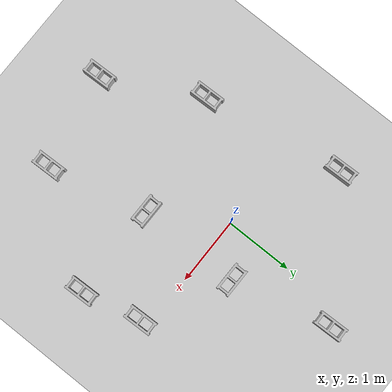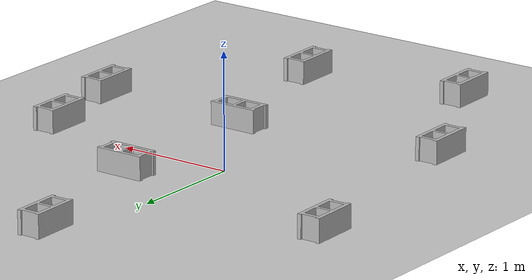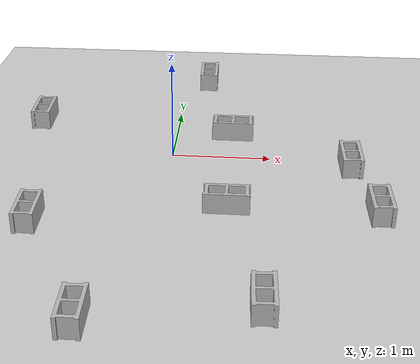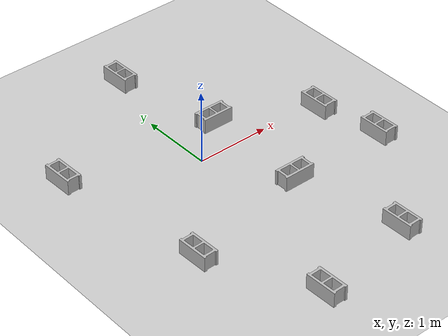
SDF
<sdf version="1.6">
 <world name="default">
  <light name="sun" type="directional">
   <pose>0 0 10 0 -0 0</pose>
   <diffuse>0.8 0.8 0.8 1</diffuse>
   <specular>0.1 0.1 0.1 1</specular>
   <attenuation>
    <range>1000</range>
    <constant>0.9</constant>
    <linear>0.01</linear>
    <quadratic>0.001</quadratic>
   </attenuation>
   <direction>-0.5 0.5 -1</direction>
  </light>
  <model name="ground_plane">
   <static>1</static>
   <link name="link">
    <collision name="collision">
     <geometry><plane><normal>0 0 1</normal><size>100 100</size></plane></geometry>
     <surface><friction><ode><mu>100</mu><mu2>50</mu2></ode></friction></surface>
    </collision>
    <visual name="visual">
     <cast_shadows>0</cast_shadows>
     <geometry><plane><normal>0 0 1</normal><size>100 100</size></plane></geometry>
     <material>
      <script><uri>file://media/materials/scripts/gazebo.material</uri><name>Gazebo/Grey</name></script>
     </material>
    </visual>
   </link>
  </model>
  <physics name="default_physics" default="0" type="ode">
   <max_step_size>0.01</max_step_size>
   <real_time_factor>1</real_time_factor>
   <real_time_update_rate>100</real_time_update_rate>
   <max_step_size>0.05</max_step_size>
   <real_time_factor>1</real_time_factor>
   <real_time_update_rate>1</real_time_update_rate>
   <ode>
    <solver><type>quick</type><iters>2</iters><sor>1.4</sor></solver>
    <constraints>
     <cfm>0</cfm>
     <erp>1</erp>
     <contact_max_correcting_vel>0</contact_max_correcting_vel>
     <contact_surface_layer>0</contact_surface_layer>
    </constraints>
   </ode>
  </physics>
  <scene><ambient>0.4 0.4 0.4 1</ambient><background>0.7 0.7 0.7 1</background><shadows>1</shadows></scene>
  <model name="cinder_block">
   <link name="link">
    <inertial>
     <pose>0 0 0.1016 0 -0 0</pose>
     <mass>5</mass>
     <inertia>
      <ixx>0.028705</ixx>
      <ixy>0</ixy>
      <iyy>0.073708</iyy>
      <ixz>0</ixz>
      <iyz>0</iyz>
      <izz>0.06908</izz>
     </inertia>
    </inertial>
    <visual name="visual">
     <geometry><mesh><uri>model://cinder_block/meshes/cinder_block.dae</uri><scale>1 1 1</scale></mesh></geometry>
    </visual>
    <collision name="left">
     <pose>0 -0.08465 0.1016 0 -0 0</pose>
     <geometry><box><size>0.43495 0.0339 0.2032</size></box></geometry>
     <surface><contact><ode><max_vel>0.1</max_vel><min_depth>0.001</min_depth></ode></contact></surface>
    </collision>
    <collision name="right">
     <pose>0 0.08465 0.1016 0 -0 0</pose>
     <geometry><box><size>0.43495 0.0339 0.2032</size></box></geometry>
     <surface><contact><ode><max_vel>0.1</max_vel><min_depth>0.001</min_depth></ode></contact></surface>
    </collision>
    <collision name="front">
     <pose>0.18625 0 0.1016 0 -0 0</pose>
     <geometry><box><size>0.0339 0.1354 0.203</size></box></geometry>
     <surface><contact><ode><max_vel>0.1</max_vel><min_depth>0.001</min_depth></ode></contact></surface>
    </collision>
    <collision name="middle">
     <pose>0 0 0.1016 0 -0 0</pose>
     <geometry><box><size>0.0339 0.1354 0.203</size></box></geometry>
     <surface><contact><ode><max_vel>0.1</max_vel><min_depth>0.001</min_depth></ode></contact></surface>
    </collision>
    <collision name="back">
     <pose>-0.18625 0 0.1016 0 -0 0</pose>
     <geometry><box><size>0.0339 0.1354 0.203</size></box></geometry>
     <surface><contact><ode><max_vel>0.1</max_vel><min_depth>0.001</min_depth></ode></contact></surface>
    </collision>
    <velocity_decay><linear>0</linear><angular>0</angular></velocity_decay>
   </link>
   <pose>0.6 -1 -0.00018 0 -0 0</pose>
   <static>0</static>
  </model>
  <model name="cinder_block_0">
   <link name="link">
    <inertial>
     <pose>0 0 0.1016 0 -0 0</pose>
     <mass>5</mass>
     <inertia>
      <ixx>0.028705</ixx>
      <ixy>0</ixy>
      <iyy>0.073708</iyy>
      <ixz>0</ixz>
      <iyz>0</iyz>
      <izz>0.06908</izz>
     </inertia>
    </inertial>
    <visual name="visual">
     <geometry><mesh><uri>model://cinder_block/meshes/cinder_block.dae</uri><scale>1 1 1</scale></mesh></geometry>
    </visual>
    <collision name="left">
     <pose>0 -0.08465 0.1016 0 -0 0</pose>
     <geometry><box><size>0.43495 0.0339 0.2032</size></box></geometry>
     <surface><contact><ode><max_vel>0.1</max_vel><min_depth>0.001</min_depth></ode></contact></surface>
    </collision>
    <collision name="right">
     <pose>0 0.08465 0.1016 0 -0 0</pose>
     <geometry><box><size>0.43495 0.0339 0.2032</size></box></geometry>
     <surface><contact><ode><max_vel>0.1</max_vel><min_depth>0.001</min_depth></ode></contact></surface>
    </collision>
    <collision name="front">
     <pose>0.18625 0 0.1016 0 -0 0</pose>
     <geometry><box><size>0.0339 0.1354 0.203</size></box></geometry>
     <surface><contact><ode><max_vel>0.1</max_vel><min_depth>0.001</min_depth></ode></contact></surface>
    </collision>
    <collision name="middle">
     <pose>0 0 0.1016 0 -0 0</pose>
     <geometry><box><size>0.0339 0.1354 0.203</size></box></geometry>
     <surface><contact><ode><max_vel>0.1</max_vel><min_depth>0.001</min_depth></ode></contact></surface>
    </collision>
    <collision name="back">
     <pose>-0.18625 0 0.1016 0 -0 0</pose>
     <geometry><box><size>0.0339 0.1354 0.203</size></box></geometry>
     <surface><contact><ode><max_vel>0.1</max_vel><min_depth>0.001</min_depth></ode></contact></surface>
    </collision>
    <velocity_decay><linear>0</linear><angular>0</angular></velocity_decay>
   </link>
   <pose>0.6 0.5 -0.00018 0 -0 0</pose>
   <static>0</static>
  </model>
  <model name="cinder_block_1">
   <link name="link">
    <inertial>
     <pose>0 0 0.1016 0 -0 0</pose>
     <mass>5</mass>
     <inertia>
      <ixx>0.028705</ixx>
      <ixy>0</ixy>
      <iyy>0.073708</iyy>
      <ixz>0</ixz>
      <iyz>0</iyz>
      <izz>0.06908</izz>
     </inertia>
    </inertial>
    <visual name="visual">
     <geometry><mesh><uri>model://cinder_block/meshes/cinder_block.dae</uri><scale>1 1 1</scale></mesh></geometry>
    </visual>
    <collision name="left">
     <pose>0 -0.08465 0.1016 0 -0 0</pose>
     <geometry><box><size>0.43495 0.0339 0.2032</size></box></geometry>
     <surface><contact><ode><max_vel>0.1</max_vel><min_depth>0.001</min_depth></ode></contact></surface>
    </collision>
    <collision name="right">
     <pose>0 0.08465 0.1016 0 -0 0</pose>
     <geometry><box><size>0.43495 0.0339 0.2032</size></box></geometry>
     <surface><contact><ode><max_vel>0.1</max_vel><min_depth>0.001</min_depth></ode></contact></surface>
    </collision>
    <collision name="front">
     <pose>0.18625 0 0.1016 0 -0 0</pose>
     <geometry><box><size>0.0339 0.1354 0.203</size></box></geometry>
     <surface><contact><ode><max_vel>0.1</max_vel><min_depth>0.001</min_depth></ode></contact></surface>
    </collision>
    <collision name="middle">
     <pose>0 0 0.1016 0 -0 0</pose>
     <geometry><box><size>0.0339 0.1354 0.203</size></box></geometry>
     <surface><contact><ode><max_vel>0.1</max_vel><min_depth>0.001</min_depth></ode></contact></surface>
    </collision>
    <collision name="back">
     <pose>-0.18625 0 0.1016 0 -0 0</pose>
     <geometry><box><size>0.0339 0.1354 0.203</size></box></geometry>
     <surface><contact><ode><max_vel>0.1</max_vel><min_depth>0.001</min_depth></ode></contact></surface>
    </collision>
    <velocity_decay><linear>0</linear><angular>0</angular></velocity_decay>
   </link>
   <pose>1.80394 -0.129003 0.202689 -3.14124 0.001865 -1.54345</pose>
   <static>0</static>
  </model>
  <gravity>0 0 -9.8</gravity>
  <magnetic_field>6e-06 2.3e-05 -4.2e-05</magnetic_field>
  <atmosphere type="adiabatic"/>
  <spherical_coordinates>
   <surface_model>EARTH_WGS84</surface_model>
   <latitude_deg>0</latitude_deg>
   <longitude_deg>0</longitude_deg>
   <elevation>0</elevation>
   <heading_deg>0</heading_deg>
  </spherical_coordinates>
  <model name="cinder_block_1_clone">
   <link name="link">
    <inertial>
     <pose>0 0 0.1016 0 -0 0</pose>
     <mass>5</mass>
     <inertia>
      <ixx>0.028705</ixx>
      <ixy>0</ixy>
      <iyy>0.073708</iyy>
      <ixz>0</ixz>
      <iyz>0</iyz>
      <izz>0.06908</izz>
     </inertia>
    </inertial>
    <visual name="visual">
     <geometry><mesh><uri>model://cinder_block/meshes/cinder_block.dae</uri><scale>1 1 1</scale></mesh></geometry>
    </visual>
    <collision name="left">
     <pose>0 -0.08465 0.1016 0 -0 0</pose>
     <geometry><box><size>0.43495 0.0339 0.2032</size></box></geometry>
     <surface><contact><ode><max_vel>0.1</max_vel><min_depth>0.001</min_depth></ode></contact></surface>
    </collision>
    <collision name="right">
     <pose>0 0.08465 0.1016 0 -0 0</pose>
     <geometry><box><size>0.43495 0.0339 0.2032</size></box></geometry>
     <surface><contact><ode><max_vel>0.1</max_vel><min_depth>0.001</min_depth></ode></contact></surface>
    </collision>
    <collision name="front">
     <pose>0.18625 0 0.1016 0 -0 0</pose>
     <geometry><box><size>0.0339 0.1354 0.203</size></box></geometry>
     <surface><contact><ode><max_vel>0.1</max_vel><min_depth>0.001</min_depth></ode></contact></surface>
    </collision>
    <collision name="middle">
     <pose>0 0 0.1016 0 -0 0</pose>
     <geometry><box><size>0.0339 0.1354 0.203</size></box></geometry>
     <surface><contact><ode><max_vel>0.1</max_vel><min_depth>0.001</min_depth></ode></contact></surface>
    </collision>
    <collision name="back">
     <pose>-0.18625 0 0.1016 0 -0 0</pose>
     <geometry><box><size>0.0339 0.1354 0.203</size></box></geometry>
     <surface><contact><ode><max_vel>0.1</max_vel><min_depth>0.001</min_depth></ode></contact></surface>
    </collision>
    <velocity_decay><linear>0</linear><angular>0</angular></velocity_decay>
   </link>
   <pose>2 -1 0.202689 -3.14124 0.001865 -1.54345</pose>
   <static>0</static>
  </model>
  <model name="cinder_block_1_clone_0">
   <link name="link">
    <inertial>
     <pose>0 0 0.1016 0 -0 0</pose>
     <mass>5</mass>
     <inertia>
      <ixx>0.028705</ixx>
      <ixy>0</ixy>
      <iyy>0.073708</iyy>
      <ixz>0</ixz>
      <iyz>0</iyz>
      <izz>0.06908</izz>
     </inertia>
    </inertial>
    <visual name="visual">
     <geometry><mesh><uri>model://cinder_block/meshes/cinder_block.dae</uri><scale>1 1 1</scale></mesh></geometry>
    </visual>
    <collision name="left">
     <pose>0 -0.08465 0.1016 0 -0 0</pose>
     <geometry><box><size>0.43495 0.0339 0.2032</size></box></geometry>
     <surface><contact><ode><max_vel>0.1</max_vel><min_depth>0.001</min_depth></ode></contact></surface>
    </collision>
    <collision name="right">
     <pose>0 0.08465 0.1016 0 -0 0</pose>
     <geometry><box><size>0.43495 0.0339 0.2032</size></box></geometry>
     <surface><contact><ode><max_vel>0.1</max_vel><min_depth>0.001</min_depth></ode></contact></surface>
    </collision>
    <collision name="front">
     <pose>0.18625 0 0.1016 0 -0 0</pose>
     <geometry><box><size>0.0339 0.1354 0.203</size></box></geometry>
     <surface><contact><ode><max_vel>0.1</max_vel><min_depth>0.001</min_depth></ode></contact></surface>
    </collision>
    <collision name="middle">
     <pose>0 0 0.1016 0 -0 0</pose>
     <geometry><box><size>0.0339 0.1354 0.203</size></box></geometry>
     <surface><contact><ode><max_vel>0.1</max_vel><min_depth>0.001</min_depth></ode></contact></surface>
    </collision>
    <collision name="back">
     <pose>-0.18625 0 0.1016 0 -0 0</pose>
     <geometry><box><size>0.0339 0.1354 0.203</size></box></geometry>
     <surface><contact><ode><max_vel>0.1</max_vel><min_depth>0.001</min_depth></ode></contact></surface>
    </collision>
    <velocity_decay><linear>0</linear><angular>0</angular></velocity_decay>
   </link>
   <pose>0.254737 1.93675 0.202689 -3.14124 0.001865 -1.54345</pose>
   <static>0</static>
  </model>
  <model name="cinder_block_1_clone_1">
   <link name="link">
    <inertial>
     <pose>0 0 0.1016 0 -0 0</pose>
     <mass>5</mass>
     <inertia>
      <ixx>0.028705</ixx>
      <ixy>0</ixy>
      <iyy>0.073708</iyy>
      <ixz>0</ixz>
      <iyz>0</iyz>
      <izz>0.06908</izz>
     </inertia>
    </inertial>
    <visual name="visual">
     <geometry><mesh><uri>model://cinder_block/meshes/cinder_block.dae</uri><scale>1 1 1</scale></mesh></geometry>
    </visual>
    <collision name="left">
     <pose>0 -0.08465 0.1016 0 -0 0</pose>
     <geometry><box><size>0.43495 0.0339 0.2032</size></box></geometry>
     <surface><contact><ode><max_vel>0.1</max_vel><min_depth>0.001</min_depth></ode></contact></surface>
    </collision>
    <collision name="right">
     <pose>0 0.08465 0.1016 0 -0 0</pose>
     <geometry><box><size>0.43495 0.0339 0.2032</size></box></geometry>
     <surface><contact><ode><max_vel>0.1</max_vel><min_depth>0.001</min_depth></ode></contact></surface>
    </collision>
    <collision name="front">
     <pose>0.18625 0 0.1016 0 -0 0</pose>
     <geometry><box><size>0.0339 0.1354 0.203</size></box></geometry>
     <surface><contact><ode><max_vel>0.1</max_vel><min_depth>0.001</min_depth></ode></contact></surface>
    </collision>
    <collision name="middle">
     <pose>0 0 0.1016 0 -0 0</pose>
     <geometry><box><size>0.0339 0.1354 0.203</size></box></geometry>
     <surface><contact><ode><max_vel>0.1</max_vel><min_depth>0.001</min_depth></ode></contact></surface>
    </collision>
    <collision name="back">
     <pose>-0.18625 0 0.1016 0 -0 0</pose>
     <geometry><box><size>0.0339 0.1354 0.203</size></box></geometry>
     <surface><contact><ode><max_vel>0.1</max_vel><min_depth>0.001</min_depth></ode></contact></surface>
    </collision>
    <velocity_decay><linear>0</linear><angular>0</angular></velocity_decay>
   </link>
   <pose>-1.51928 0.734601 0.202689 -3.14124 0.001865 -1.54345</pose>
   <static>0</static>
  </model>
  <model name="cinder_block_1_clone_2">
   <link name="link">
    <inertial>
     <pose>0 0 0.1016 0 -0 0</pose>
     <mass>5</mass>
     <inertia>
      <ixx>0.028705</ixx>
      <ixy>0</ixy>
      <iyy>0.073708</iyy>
      <ixz>0</ixz>
      <iyz>0</iyz>
      <izz>0.06908</izz>
     </inertia>
    </inertial>
    <visual name="visual">
     <geometry><mesh><uri>model://cinder_block/meshes/cinder_block.dae</uri><scale>1 1 1</scale></mesh></geometry>
    </visual>
    <collision name="left">
     <pose>0 -0.08465 0.1016 0 -0 0</pose>
     <geometry><box><size>0.43495 0.0339 0.2032</size></box></geometry>
     <surface><contact><ode><max_vel>0.1</max_vel><min_depth>0.001</min_depth></ode></contact></surface>
    </collision>
    <collision name="right">
     <pose>0 0.08465 0.1016 0 -0 0</pose>
     <geometry><box><size>0.43495 0.0339 0.2032</size></box></geometry>
     <surface><contact><ode><max_vel>0.1</max_vel><min_depth>0.001</min_depth></ode></contact></surface>
    </collision>
    <collision name="front">
     <pose>0.18625 0 0.1016 0 -0 0</pose>
     <geometry><box><size>0.0339 0.1354 0.203</size></box></geometry>
     <surface><contact><ode><max_vel>0.1</max_vel><min_depth>0.001</min_depth></ode></contact></surface>
    </collision>
    <collision name="middle">
     <pose>0 0 0.1016 0 -0 0</pose>
     <geometry><box><size>0.0339 0.1354 0.203</size></box></geometry>
     <surface><contact><ode><max_vel>0.1</max_vel><min_depth>0.001</min_depth></ode></contact></surface>
    </collision>
    <collision name="back">
     <pose>-0.18625 0 0.1016 0 -0 0</pose>
     <geometry><box><size>0.0339 0.1354 0.203</size></box></geometry>
     <surface><contact><ode><max_vel>0.1</max_vel><min_depth>0.001</min_depth></ode></contact></surface>
    </collision>
    <velocity_decay><linear>0</linear><angular>0</angular></velocity_decay>
   </link>
   <pose>-1.16953 -1.35084 0.202689 -3.14124 0.001865 -1.54345</pose>
   <static>0</static>
  </model>
  <model name="cinder_block_1_clone_3">
   <link name="link">
    <inertial>
     <pose>0 0 0.1016 0 -0 0</pose>
     <mass>5</mass>
     <inertia>
      <ixx>0.028705</ixx>
      <ixy>0</ixy>
      <iyy>0.073708</iyy>
      <ixz>0</ixz>
      <iyz>0</iyz>
      <izz>0.06908</izz>
     </inertia>
    </inertial>
    <visual name="visual">
     <geometry><mesh><uri>model://cinder_block/meshes/cinder_block.dae</uri><scale>1 1 1</scale></mesh></geometry>
    </visual>
    <collision name="left">
     <pose>0 -0.08465 0.1016 0 -0 0</pose>
     <geometry><box><size>0.43495 0.0339 0.2032</size></box></geometry>
     <surface><contact><ode><max_vel>0.1</max_vel><min_depth>0.001</min_depth></ode></contact></surface>
    </collision>
    <collision name="right">
     <pose>0 0.08465 0.1016 0 -0 0</pose>
     <geometry><box><size>0.43495 0.0339 0.2032</size></box></geometry>
     <surface><contact><ode><max_vel>0.1</max_vel><min_depth>0.001</min_depth></ode></contact></surface>
    </collision>
    <collision name="front">
     <pose>0.18625 0 0.1016 0 -0 0</pose>
     <geometry><box><size>0.0339 0.1354 0.203</size></box></geometry>
     <surface><contact><ode><max_vel>0.1</max_vel><min_depth>0.001</min_depth></ode></contact></surface>
    </collision>
    <collision name="middle">
     <pose>0 0 0.1016 0 -0 0</pose>
     <geometry><box><size>0.0339 0.1354 0.203</size></box></geometry>
     <surface><contact><ode><max_vel>0.1</max_vel><min_depth>0.001</min_depth></ode></contact></surface>
    </collision>
    <collision name="back">
     <pose>-0.18625 0 0.1016 0 -0 0</pose>
     <geometry><box><size>0.0339 0.1354 0.203</size></box></geometry>
     <surface><contact><ode><max_vel>0.1</max_vel><min_depth>0.001</min_depth></ode></contact></surface>
    </collision>
    <velocity_decay><linear>0</linear><angular>0</angular></velocity_decay>
   </link>
   <pose>-0.476014 -2.70883 0.202689 -3.14124 0.001865 -1.54345</pose>
   <static>0</static>
  </model>
  <model name="cinder_block_1_clone_4">
   <link name="link">
    <inertial>
     <pose>0 0 0.1016 0 -0 0</pose>
     <mass>5</mass>
     <inertia>
      <ixx>0.028705</ixx>
      <ixy>0</ixy>
      <iyy>0.073708</iyy>
      <ixz>0</ixz>
      <iyz>0</iyz>
      <izz>0.06908</izz>
     </inertia>
    </inertial>
    <visual name="visual">
     <geometry><mesh><uri>model://cinder_block/meshes/cinder_block.dae</uri><scale>1 1 1</scale></mesh></geometry>
    </visual>
    <collision name="left">
     <pose>0 -0.08465 0.1016 0 -0 0</pose>
     <geometry><box><size>0.43495 0.0339 0.2032</size></box></geometry>
     <surface><contact><ode><max_vel>0.1</max_vel><min_depth>0.001</min_depth></ode></contact></surface>
    </collision>
    <collision name="right">
     <pose>0 0.08465 0.1016 0 -0 0</pose>
     <geometry><box><size>0.43495 0.0339 0.2032</size></box></geometry>
     <surface><contact><ode><max_vel>0.1</max_vel><min_depth>0.001</min_depth></ode></contact></surface>
    </collision>
    <collision name="front">
     <pose>0.18625 0 0.1016 0 -0 0</pose>
     <geometry><box><size>0.0339 0.1354 0.203</size></box></geometry>
     <surface><contact><ode><max_vel>0.1</max_vel><min_depth>0.001</min_depth></ode></contact></surface>
    </collision>
    <collision name="middle">
     <pose>0 0 0.1016 0 -0 0</pose>
     <geometry><box><size>0.0339 0.1354 0.203</size></box></geometry>
     <surface><contact><ode><max_vel>0.1</max_vel><min_depth>0.001</min_depth></ode></contact></surface>
    </collision>
    <collision name="back">
     <pose>-0.18625 0 0.1016 0 -0 0</pose>
     <geometry><box><size>0.0339 0.1354 0.203</size></box></geometry>
     <surface><contact><ode><max_vel>0.1</max_vel><min_depth>0.001</min_depth></ode></contact></surface>
    </collision>
    <velocity_decay><linear>0</linear><angular>0</angular></velocity_decay>
   </link>
   <pose>0.953083 -2.44557 0.202689 -3.14124 0.001865 -1.54345</pose>
   <static>0</static>
  </model>
 </world>
</sdf>
